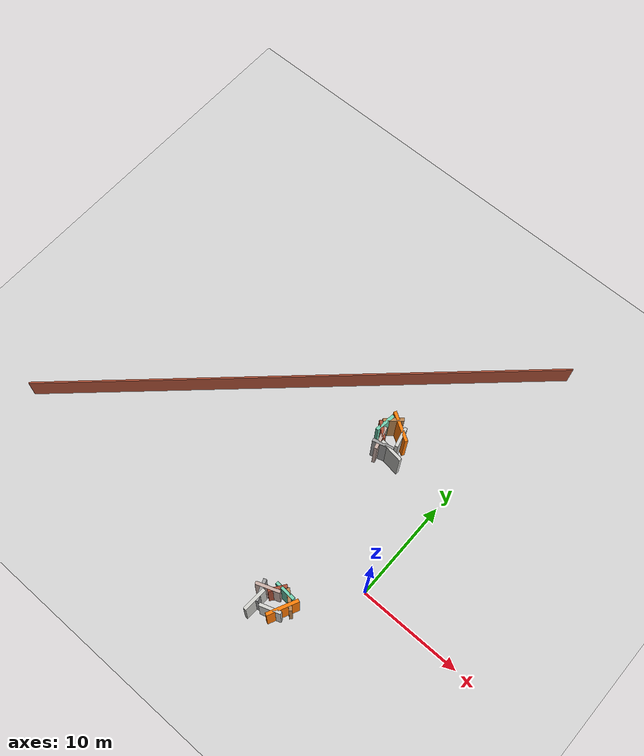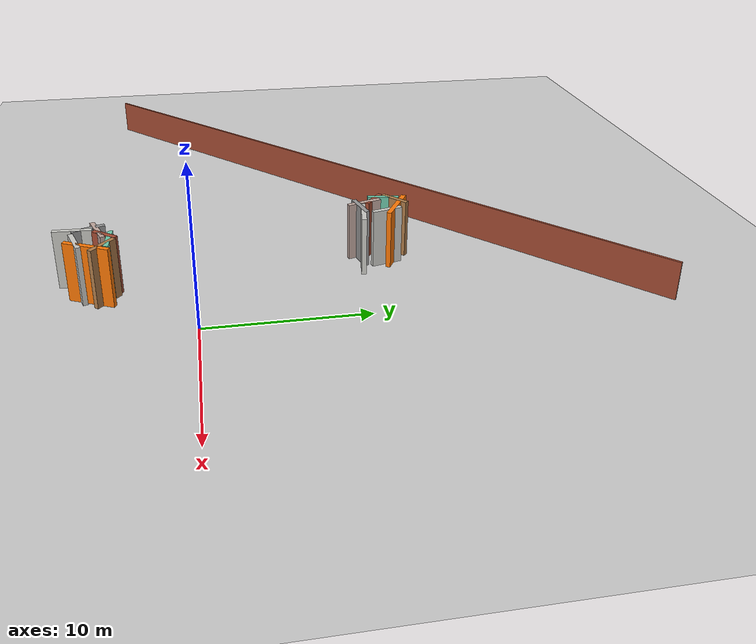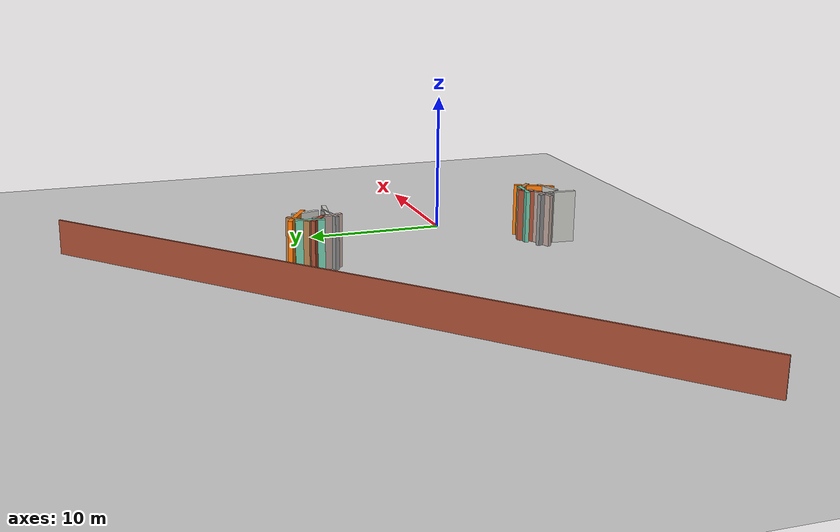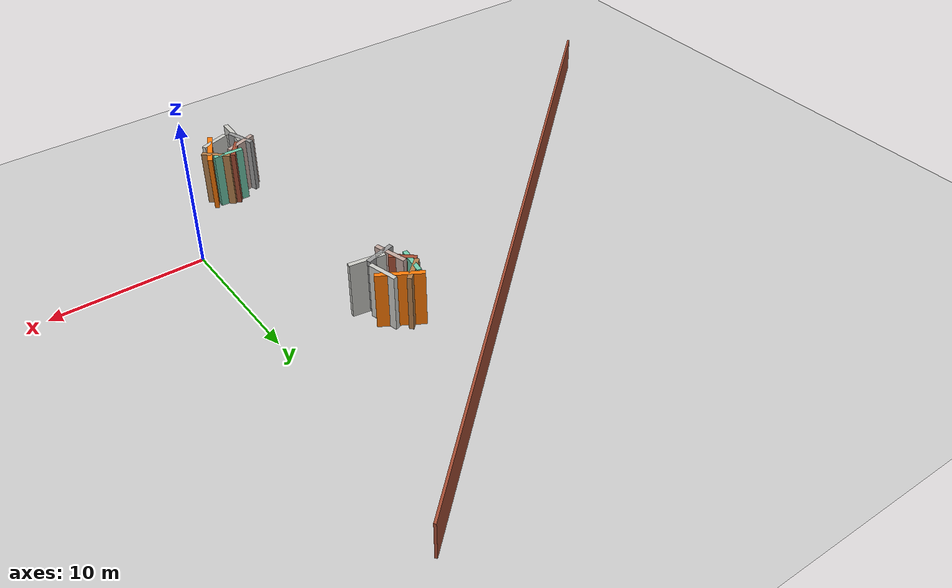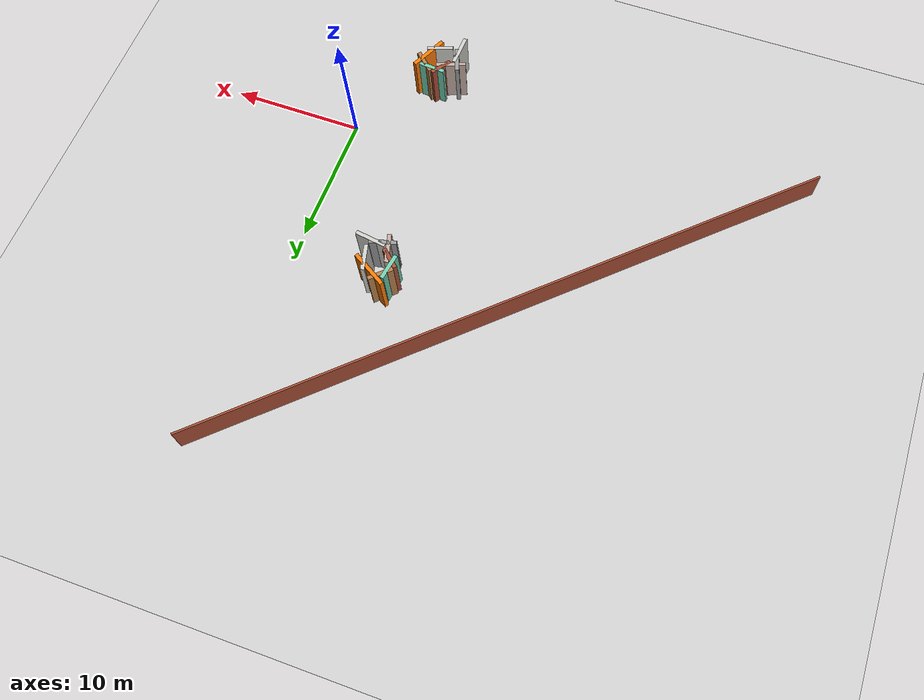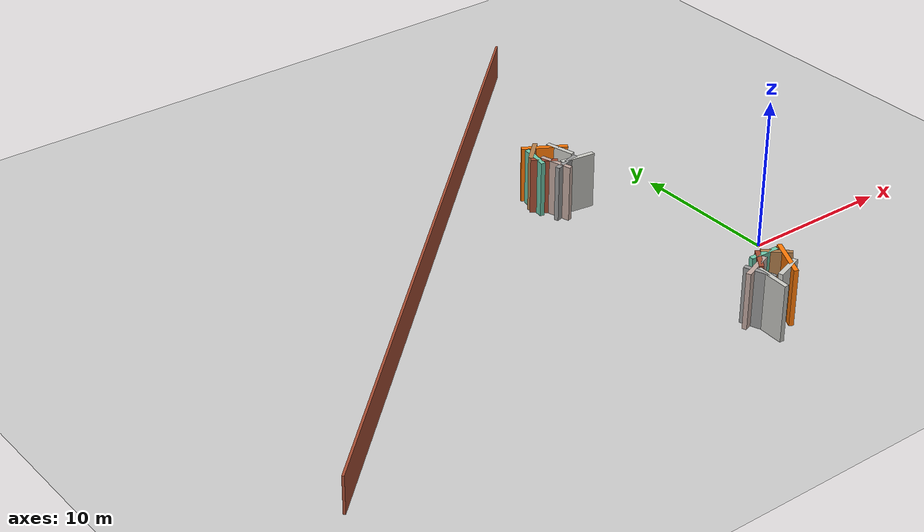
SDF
<sdf version="1.6">
 <world name="default">
  <model name="ground_plane">
   <static>1</static>
   <link name="link">
    <collision name="collision">
     <geometry><plane><normal>0 0 1</normal><size>100 100</size></plane></geometry>
     <surface><friction><ode><mu>100</mu><mu2>50</mu2></ode></friction></surface>
    </collision>
    <visual name="visual">
     <cast_shadows>0</cast_shadows>
     <geometry><plane><normal>0 0 1</normal><size>100 100</size></plane></geometry>
     <material>
      <script><uri>file://media/materials/scripts/gazebo.material</uri><name>Gazebo/Grey</name></script>
     </material>
    </visual>
   </link>
  </model>
  <model name="io2018obs1">
   <pose>-6.7989 11.6978 0 0 -0 0</pose>
   <link name="Wall_1">
    <collision name="Wall_1_Collision">
     <geometry><box><size>1.98802 0.3 5</size></box></geometry>
     <pose>0 0 1.25 0 -0 0</pose>
    </collision>
    <visual name="Wall_1_Visual">
     <pose>0 0 1.25 0 -0 0</pose>
     <geometry><box><size>1.98802 0.3 5</size></box></geometry>
     <material>
      <script><uri>file://media/materials/scripts/gazebo.material</uri><name>Gazebo/CeilingTiled</name></script>
      <ambient>1 1 1 1</ambient>
     </material>
     <meta><layer>0</layer></meta>
    </visual>
    <pose>0.680268 0.279956 0 0 -0 1.81211</pose>
   </link>
   <link name="Wall_2">
    <collision name="Wall_2_Collision">
     <geometry><box><size>2.98224 0.3 5</size></box></geometry>
     <pose>0 0 1.25 0 -0 0</pose>
    </collision>
    <visual name="Wall_2_Visual">
     <pose>0 0 1.25 0 -0 0</pose>
     <geometry><box><size>2.98224 0.3 5</size></box></geometry>
     <material>
      <script><uri>file://media/materials/scripts/gazebo.material</uri><name>Gazebo/Grey</name></script>
      <ambient>0.996078 0.47451 0.0196078 1</ambient>
     </material>
     <meta><layer>0</layer></meta>
    </visual>
    <pose>0.01442 1.04473 0 0 -0 2.60117</pose>
   </link>
   <link name="Wall_3">
    <collision name="Wall_3_Collision">
     <geometry><box><size>1.91541 0.3 5</size></box></geometry>
     <pose>0 0 1.25 0 -0 0</pose>
    </collision>
    <visual name="Wall_3_Visual">
     <pose>0 0 1.25 0 -0 0</pose>
     <geometry><box><size>1.91541 0.3 5</size></box></geometry>
     <material>
      <script><uri>file://media/materials/scripts/gazebo.material</uri><name>Gazebo/Wood</name></script>
      <ambient>1 0.764706 0.305882 1</ambient>
     </material>
     <meta><layer>0</layer></meta>
    </visual>
    <pose>-0.868641 1.11723 0 0 -0 -2.40096</pose>
   </link>
   <link name="Wall_4">
    <collision name="Wall_4_Collision">
     <geometry><box><size>2.0052 0.3 5</size></box></geometry>
     <pose>0 0 1.25 0 -0 0</pose>
    </collision>
    <visual name="Wall_4_Visual">
     <pose>0 0 1.25 0 -0 0</pose>
     <geometry><box><size>2.0052 0.3 5</size></box></geometry>
     <material>
      <script><uri>file://media/materials/scripts/gazebo.material</uri><name>Gazebo/Grey</name></script>
      <ambient>0.435294 0.796078 0.67451 1</ambient>
     </material>
     <meta><layer>0</layer></meta>
    </visual>
    <pose>-1.2417 0.42342 0 0 -0 -1.72387</pose>
   </link>
   <link name="Wall_5">
    <collision name="Wall_5_Collision">
     <geometry><box><size>1.71361 0.3 5</size></box></geometry>
     <pose>0 0 1.25 0 -0 0</pose>
    </collision>
    <visual name="Wall_5_Visual">
     <pose>0 0 1.25 0 -0 0</pose>
     <geometry><box><size>1.71361 0.3 5</size></box></geometry>
     <material>
      <script><uri>file://media/materials/scripts/gazebo.material</uri><name>Gazebo/Bricks</name></script>
      <ambient>1 1 1 1</ambient>
     </material>
     <meta><layer>0</layer></meta>
    </visual>
    <pose>-1.04078 -0.230654 0 0 -0 -0.718988</pose>
   </link>
   <link name="Wall_6">
    <collision name="Wall_6_Collision">
     <geometry><box><size>2.25058 0.3 5</size></box></geometry>
     <pose>0 0 1.25 0 -0 0</pose>
    </collision>
    <visual name="Wall_6_Visual">
     <pose>0 0 1.25 0 -0 0</pose>
     <geometry><box><size>2.25058 0.3 5</size></box></geometry>
     <material>
      <script><uri>file://media/materials/scripts/gazebo.material</uri><name>Gazebo/Grey</name></script>
      <ambient>0.760784 0.662745 0.627451 1</ambient>
     </material>
     <meta><layer>0</layer></meta>
    </visual>
    <pose>-0.634849 -0.933414 0 0 -0 -1.30095</pose>
   </link>
   <link name="Wall_7">
    <collision name="Wall_7_Collision">
     <geometry><box><size>2 0.3 5</size></box></geometry>
     <pose>0 0 1.25 0 -0 0</pose>
    </collision>
    <visual name="Wall_7_Visual">
     <pose>0 0 1.25 0 -0 0</pose>
     <geometry><box><size>2 0.3 5</size></box></geometry>
     <material>
      <script><uri>file://media/materials/scripts/gazebo.material</uri><name>Gazebo/Grey</name></script>
      <ambient>1 1 1 1</ambient>
     </material>
     <meta><layer>0</layer></meta>
    </visual>
    <pose>-0.094331 -1.27342 0 0 -0 0.261799</pose>
   </link>
   <link name="Wall_8">
    <collision name="Wall_8_Collision">
     <geometry><box><size>2.34356 0.3 5</size></box></geometry>
     <pose>0 0 1.25 0 -0 0</pose>
    </collision>
    <visual name="Wall_8_Visual">
     <pose>0 0 1.25 0 -0 0</pose>
     <geometry><box><size>2.34356 0.3 5</size></box></geometry>
     <material>
      <script><uri>file://media/materials/scripts/gazebo.material</uri><name>Gazebo/CeilingTiled</name></script>
      <ambient>1 1 1 1</ambient>
     </material>
     <meta><layer>0</layer></meta>
    </visual>
    <pose>0.821928 -1.23577 0 0 -0 -0.142091</pose>
   </link>
   <static>1</static>
  </model>
  <model name="io2018obs1_2">
   <pose>-5.06876 -6.23908 0 0 0 -1.47799</pose>
   <link name="Wall_1">
    <collision name="Wall_1_Collision">
     <geometry><box><size>1.98802 0.3 5</size></box></geometry>
     <pose>0 0 1.25 0 -0 0</pose>
    </collision>
    <visual name="Wall_1_Visual">
     <pose>0 0 1.25 0 -0 0</pose>
     <geometry><box><size>1.98802 0.3 5</size></box></geometry>
     <material>
      <script><uri>file://media/materials/scripts/gazebo.material</uri><name>Gazebo/CeilingTiled</name></script>
      <ambient>1 1 1 1</ambient>
     </material>
     <meta><layer>0</layer></meta>
    </visual>
    <pose>0.680268 0.279956 0 0 -0 1.81211</pose>
   </link>
   <link name="Wall_2">
    <collision name="Wall_2_Collision">
     <geometry><box><size>2.98224 0.3 5</size></box></geometry>
     <pose>0 0 1.25 0 -0 0</pose>
    </collision>
    <visual name="Wall_2_Visual">
     <pose>0 0 1.25 0 -0 0</pose>
     <geometry><box><size>2.98224 0.3 5</size></box></geometry>
     <material>
      <script><uri>file://media/materials/scripts/gazebo.material</uri><name>Gazebo/Grey</name></script>
      <ambient>0.996078 0.47451 0.0196078 1</ambient>
     </material>
     <meta><layer>0</layer></meta>
    </visual>
    <pose>0.01442 1.04473 0 0 -0 2.60117</pose>
   </link>
   <link name="Wall_3">
    <collision name="Wall_3_Collision">
     <geometry><box><size>1.91541 0.3 5</size></box></geometry>
     <pose>0 0 1.25 0 -0 0</pose>
    </collision>
    <visual name="Wall_3_Visual">
     <pose>0 0 1.25 0 -0 0</pose>
     <geometry><box><size>1.91541 0.3 5</size></box></geometry>
     <material>
      <script><uri>file://media/materials/scripts/gazebo.material</uri><name>Gazebo/Wood</name></script>
      <ambient>1 0.764706 0.305882 1</ambient>
     </material>
     <meta><layer>0</layer></meta>
    </visual>
    <pose>-0.868641 1.11723 0 0 -0 -2.40096</pose>
   </link>
   <link name="Wall_4">
    <collision name="Wall_4_Collision">
     <geometry><box><size>2.0052 0.3 5</size></box></geometry>
     <pose>0 0 1.25 0 -0 0</pose>
    </collision>
    <visual name="Wall_4_Visual">
     <pose>0 0 1.25 0 -0 0</pose>
     <geometry><box><size>2.0052 0.3 5</size></box></geometry>
     <material>
      <script><uri>file://media/materials/scripts/gazebo.material</uri><name>Gazebo/Grey</name></script>
      <ambient>0.435294 0.796078 0.67451 1</ambient>
     </material>
     <meta><layer>0</layer></meta>
    </visual>
    <pose>-1.2417 0.42342 0 0 -0 -1.72387</pose>
   </link>
   <link name="Wall_5">
    <collision name="Wall_5_Collision">
     <geometry><box><size>1.71361 0.3 5</size></box></geometry>
     <pose>0 0 1.25 0 -0 0</pose>
    </collision>
    <visual name="Wall_5_Visual">
     <pose>0 0 1.25 0 -0 0</pose>
     <geometry><box><size>1.71361 0.3 5</size></box></geometry>
     <material>
      <script><uri>file://media/materials/scripts/gazebo.material</uri><name>Gazebo/Bricks</name></script>
      <ambient>1 1 1 1</ambient>
     </material>
     <meta><layer>0</layer></meta>
    </visual>
    <pose>-1.04078 -0.230654 0 0 -0 -0.718988</pose>
   </link>
   <link name="Wall_6">
    <collision name="Wall_6_Collision">
     <geometry><box><size>2.25058 0.3 5</size></box></geometry>
     <pose>0 0 1.25 0 -0 0</pose>
    </collision>
    <visual name="Wall_6_Visual">
     <pose>0 0 1.25 0 -0 0</pose>
     <geometry><box><size>2.25058 0.3 5</size></box></geometry>
     <material>
      <script><uri>file://media/materials/scripts/gazebo.material</uri><name>Gazebo/Grey</name></script>
      <ambient>0.760784 0.662745 0.627451 1</ambient>
     </material>
     <meta><layer>0</layer></meta>
    </visual>
    <pose>-0.634849 -0.933414 0 0 -0 -1.30095</pose>
   </link>
   <link name="Wall_7">
    <collision name="Wall_7_Collision">
     <geometry><box><size>2 0.3 5</size></box></geometry>
     <pose>0 0 1.25 0 -0 0</pose>
    </collision>
    <visual name="Wall_7_Visual">
     <pose>0 0 1.25 0 -0 0</pose>
     <geometry><box><size>2 0.3 5</size></box></geometry>
     <material>
      <script><uri>file://media/materials/scripts/gazebo.material</uri><name>Gazebo/Grey</name></script>
      <ambient>1 1 1 1</ambient>
     </material>
     <meta><layer>0</layer></meta>
    </visual>
    <pose>-0.094331 -1.27342 0 0 -0 0.261799</pose>
   </link>
   <link name="Wall_8">
    <collision name="Wall_8_Collision">
     <geometry><box><size>2.34356 0.3 5</size></box></geometry>
     <pose>0 0 1.25 0 -0 0</pose>
    </collision>
    <visual name="Wall_8_Visual">
     <pose>0 0 1.25 0 -0 0</pose>
     <geometry><box><size>2.34356 0.3 5</size></box></geometry>
     <material>
      <script><uri>file://media/materials/scripts/gazebo.material</uri><name>Gazebo/CeilingTiled</name></script>
      <ambient>1 1 1 1</ambient>
     </material>
     <meta><layer>0</layer></meta>
    </visual>
    <pose>0.821928 -1.23577 0 0 -0 -0.142091</pose>
   </link>
   <static>1</static>
  </model>
  <model name="wall1_1">
   <pose>-16.9608 10.9979 0 0 -0 0.747125</pose>
   <link name="Wall_0">
    <collision name="Wall_0_Collision">
     <geometry><box><size>50 0.15 2.5</size></box></geometry>
     <pose>0 0 1.25 0 -0 0</pose>
    </collision>
    <visual name="Wall_0_Visual">
     <pose>0 0 1.25 0 -0 0</pose>
     <geometry><box><size>50 0.15 2.5</size></box></geometry>
     <material>
      <script><uri>file://media/materials/scripts/gazebo.material</uri><name>Gazebo/Bricks</name></script>
      <ambient>1 1 1 1</ambient>
     </material>
    </visual>
    <pose>1e-06 0 0 0 -0 3.14159</pose>
   </link>
   <static>1</static>
  </model>
 </world>
</sdf>
